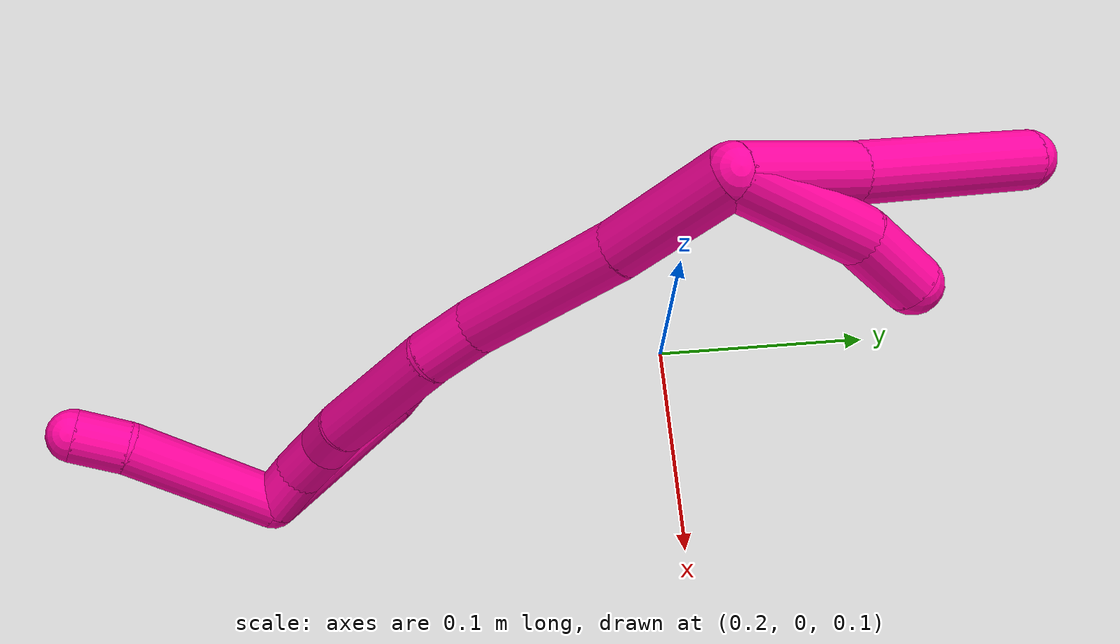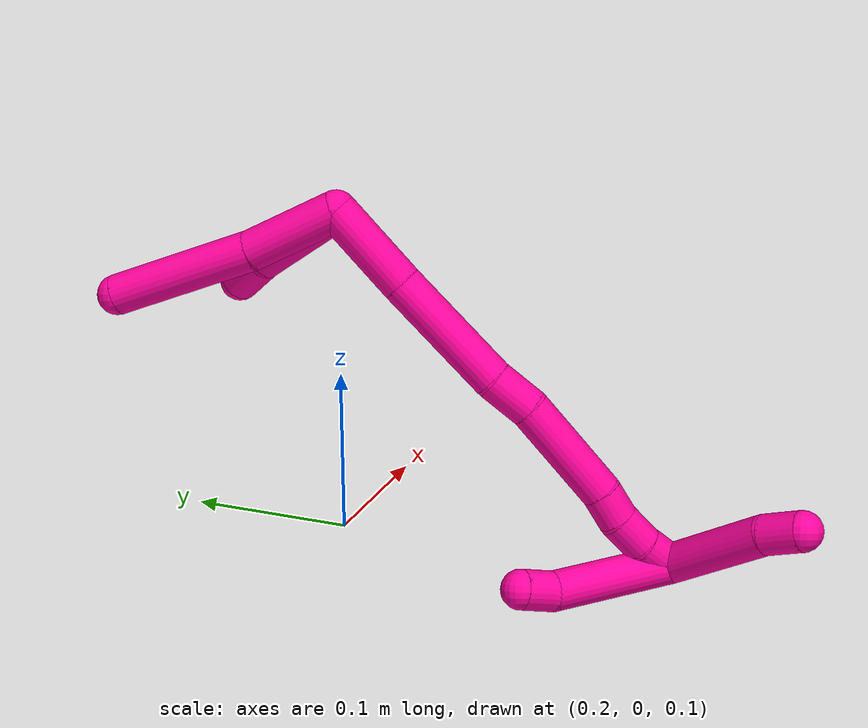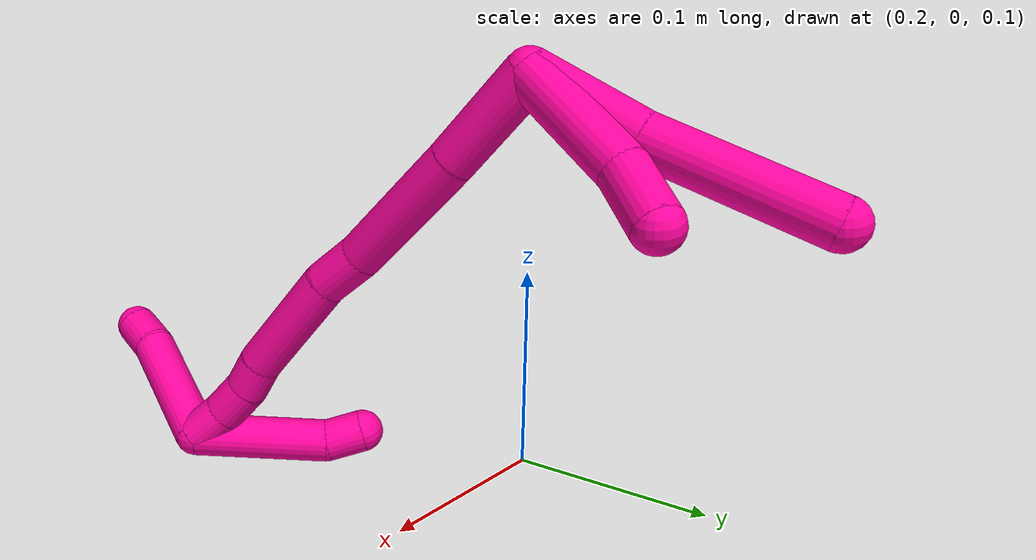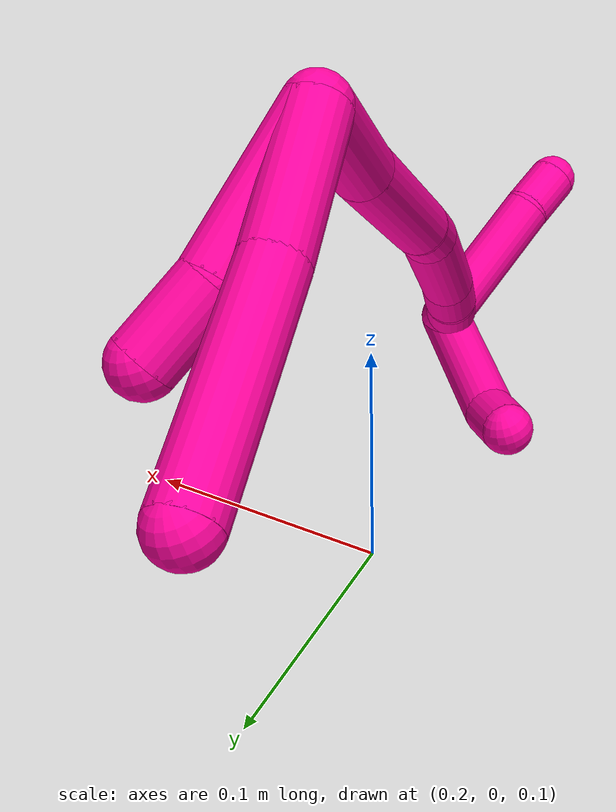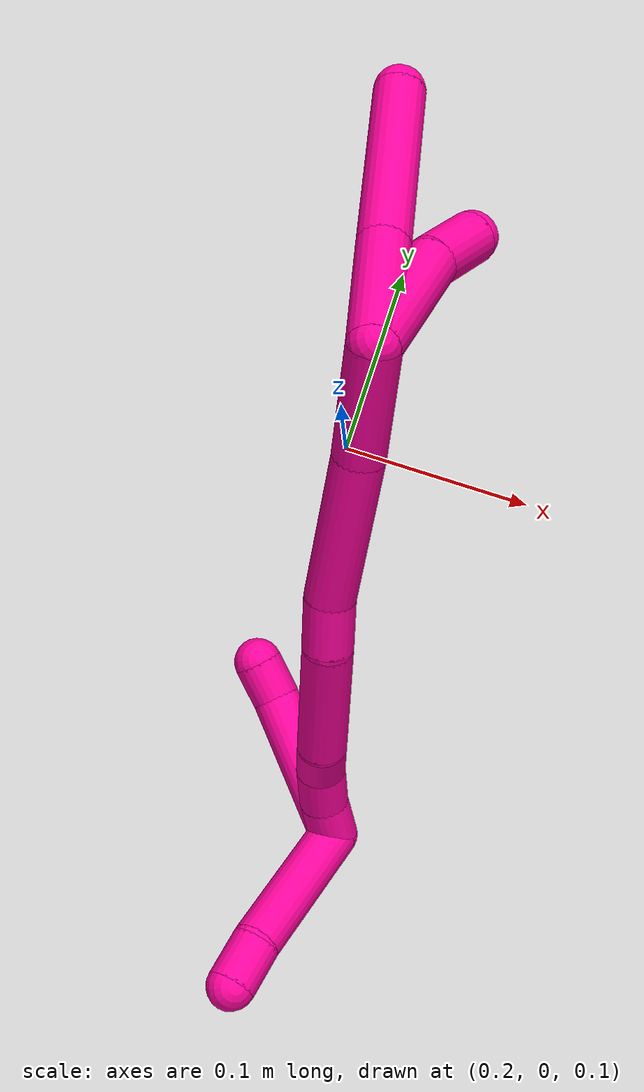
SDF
<sdf version="1.7">
 <world name="default">
  <model name="18">
   <static>0</static>
   <link name="18">
    <collision name="collision-cylinder-e_1_2_8">
     <pose>-0.008933 0.025607 -0.012046 -2.01052 -0.305754 0.476311</pose>
     <geometry><cylinder><radius>0.0125</radius><length>0.05935</length></cylinder></geometry>
     <surface>
      <friction><ode><mu>1.16</mu><mu2>1.16</mu2><slip1>0</slip1><slip2>0</slip2></ode></friction>
      <contact><ode><kp>1e+06</kp><kd>1</kd><max_vel>0</max_vel><min_depth>0.001</min_depth></ode></contact>
     </surface>
    </collision>
    <visual name="visual-cylinder-e_1_2_8">
     <pose>-0.008933 0.025607 -0.012046 -2.01052 -0.305754 0.476311</pose>
     <geometry><cylinder><radius>0.0125</radius><length>0.05935</length></cylinder></geometry>
     <material><ambient>1 0.007843 0.615686 1</ambient></material>
    </visual>
    <collision name="collision-cylinder-e_2_8_6">
     <pose>-0.033077 0.09163 -0.037857 -1.89903 -0.342256 0.473772</pose>
     <geometry><cylinder><radius>0.0125</radius><length>0.09065</length></cylinder></geometry>
     <surface>
      <friction><ode><mu>1.16</mu><mu2>1.16</mu2><slip1>0</slip1><slip2>0</slip2></ode></friction>
      <contact><ode><kp>1e+06</kp><kd>1</kd><max_vel>0</max_vel><min_depth>0.001</min_depth></ode></contact>
     </surface>
    </collision>
    <visual name="visual-cylinder-e_2_8_6">
     <pose>-0.033077 0.09163 -0.037857 -1.89903 -0.342256 0.473772</pose>
     <geometry><cylinder><radius>0.0125</radius><length>0.09065</length></cylinder></geometry>
     <material><ambient>1 0.007843 0.615686 1</ambient></material>
    </visual>
    <collision name="collision-cylinder-e_1_2_9">
     <pose>0.002305 0.030043 -0.014385 -2.01735 0.069081 -0.109602</pose>
     <geometry><cylinder><radius>0.0125</radius><length>0.066777</length></cylinder></geometry>
     <surface>
      <friction><ode><mu>1.16</mu><mu2>1.16</mu2><slip1>0</slip1><slip2>0</slip2></ode></friction>
      <contact><ode><kp>1e+06</kp><kd>1</kd><max_vel>0</max_vel><min_depth>0.001</min_depth></ode></contact>
     </surface>
    </collision>
    <visual name="visual-cylinder-e_1_2_9">
     <pose>0.002305 0.030043 -0.014385 -2.01735 0.069081 -0.109602</pose>
     <geometry><cylinder><radius>0.0125</radius><length>0.066777</length></cylinder></geometry>
     <material><ambient>1 0.007843 0.615686 1</ambient></material>
    </visual>
    <collision name="collision-cylinder-e_2_9_5">
     <pose>0.010099 0.074295 -0.035395 -2.00713 0.33681 -0.521588</pose>
     <geometry><cylinder><radius>0.0125</radius><length>0.033223</length></cylinder></geometry>
     <surface>
      <friction><ode><mu>1.16</mu><mu2>1.16</mu2><slip1>0</slip1><slip2>0</slip2></ode></friction>
      <contact><ode><kp>1e+06</kp><kd>1</kd><max_vel>0</max_vel><min_depth>0.001</min_depth></ode></contact>
     </surface>
    </collision>
    <visual name="visual-cylinder-e_2_9_5">
     <pose>0.010099 0.074295 -0.035395 -2.00713 0.33681 -0.521588</pose>
     <geometry><cylinder><radius>0.0125</radius><length>0.033223</length></cylinder></geometry>
     <material><ambient>1 0.007843 0.615686 1</ambient></material>
    </visual>
    <collision name="collision-cylinder-e_1_2_10">
     <pose>0.012874 -0.015013 -0.021366 2.52909 0.458041 1.27055</pose>
     <geometry><cylinder><radius>0.0125</radius><length>0.058229</length></cylinder></geometry>
     <surface>
      <friction><ode><mu>1.16</mu><mu2>1.16</mu2><slip1>0</slip1><slip2>0</slip2></ode></friction>
      <contact><ode><kp>1e+06</kp><kd>1</kd><max_vel>0</max_vel><min_depth>0.001</min_depth></ode></contact>
     </surface>
    </collision>
    <visual name="visual-cylinder-e_1_2_10">
     <pose>0.012874 -0.015013 -0.021366 2.52909 0.458041 1.27055</pose>
     <geometry><cylinder><radius>0.0125</radius><length>0.058229</length></cylinder></geometry>
     <material><ambient>1 0.007843 0.615686 1</ambient></material>
    </visual>
    <collision name="collision-cylinder-e_2_10_11">
     <pose>0.041607 -0.052693 -0.070993 2.46559 0.41263 1.07412</pose>
     <geometry><cylinder><radius>0.0125</radius><length>0.079092</length></cylinder></geometry>
     <surface>
      <friction><ode><mu>1.16</mu><mu2>1.16</mu2><slip1>0</slip1><slip2>0</slip2></ode></friction>
      <contact><ode><kp>1e+06</kp><kd>1</kd><max_vel>0</max_vel><min_depth>0.001</min_depth></ode></contact>
     </surface>
    </collision>
    <visual name="visual-cylinder-e_2_10_11">
     <pose>0.041607 -0.052693 -0.070993 2.46559 0.41263 1.07412</pose>
     <geometry><cylinder><radius>0.0125</radius><length>0.079092</length></cylinder></geometry>
     <material><ambient>1 0.007843 0.615686 1</ambient></material>
    </visual>
    <collision name="collision-cylinder-e_3_11_12">
     <pose>0.064864 -0.083594 -0.107877 2.37934 0.555264 1.2364</pose>
     <geometry><cylinder><radius>0.0125</radius><length>0.028065</length></cylinder></geometry>
     <surface>
      <friction><ode><mu>1.16</mu><mu2>1.16</mu2><slip1>0</slip1><slip2>0</slip2></ode></friction>
      <contact><ode><kp>1e+06</kp><kd>1</kd><max_vel>0</max_vel><min_depth>0.001</min_depth></ode></contact>
     </surface>
    </collision>
    <visual name="visual-cylinder-e_3_11_12">
     <pose>0.064864 -0.083594 -0.107877 2.37934 0.555264 1.2364</pose>
     <geometry><cylinder><radius>0.0125</radius><length>0.028065</length></cylinder></geometry>
     <material><ambient>1 0.007843 0.615686 1</ambient></material>
    </visual>
    <collision name="collision-cylinder-e_4_12_13">
     <pose>0.088748 -0.107474 -0.141836 2.58837 0.505673 1.47673</pose>
     <geometry><cylinder><radius>0.0125</radius><length>0.068072</length></cylinder></geometry>
     <surface>
      <friction><ode><mu>1.16</mu><mu2>1.16</mu2><slip1>0</slip1><slip2>0</slip2></ode></friction>
      <contact><ode><kp>1e+06</kp><kd>1</kd><max_vel>0</max_vel><min_depth>0.001</min_depth></ode></contact>
     </surface>
    </collision>
    <visual name="visual-cylinder-e_4_12_13">
     <pose>0.088748 -0.107474 -0.141836 2.58837 0.505673 1.47673</pose>
     <geometry><cylinder><radius>0.0125</radius><length>0.068072</length></cylinder></geometry>
     <material><ambient>1 0.007843 0.615686 1</ambient></material>
    </visual>
    <collision name="collision-cylinder-e_5_13_14">
     <pose>0.109759 -0.126464 -0.175608 2.7641 0.462397 1.77823</pose>
     <geometry><cylinder><radius>0.0125</radius><length>0.020281</length></cylinder></geometry>
     <surface>
      <friction><ode><mu>1.16</mu><mu2>1.16</mu2><slip1>0</slip1><slip2>0</slip2></ode></friction>
      <contact><ode><kp>1e+06</kp><kd>1</kd><max_vel>0</max_vel><min_depth>0.001</min_depth></ode></contact>
     </surface>
    </collision>
    <visual name="visual-cylinder-e_5_13_14">
     <pose>0.109759 -0.126464 -0.175608 2.7641 0.462397 1.77823</pose>
     <geometry><cylinder><radius>0.0125</radius><length>0.020281</length></cylinder></geometry>
     <material><ambient>1 0.007843 0.615686 1</ambient></material>
    </visual>
    <collision name="collision-cylinder-e_6_14_15">
     <pose>0.121085 -0.134845 -0.192038 2.57944 0.624089 1.68147</pose>
     <geometry><cylinder><radius>0.0125</radius><length>0.023285</length></cylinder></geometry>
     <surface>
      <friction><ode><mu>1.16</mu><mu2>1.16</mu2><slip1>0</slip1><slip2>0</slip2></ode></friction>
      <contact><ode><kp>1e+06</kp><kd>1</kd><max_vel>0</max_vel><min_depth>0.001</min_depth></ode></contact>
     </surface>
    </collision>
    <visual name="visual-cylinder-e_6_14_15">
     <pose>0.121085 -0.134845 -0.192038 2.57944 0.624089 1.68147</pose>
     <geometry><cylinder><radius>0.0125</radius><length>0.023285</length></cylinder></geometry>
     <material><ambient>1 0.007843 0.615686 1</ambient></material>
    </visual>
    <collision name="collision-cylinder-e_7_15_1">
     <pose>0.1361 -0.144695 -0.206463 2.499 0.796324 1.80281</pose>
     <geometry><cylinder><radius>0.0125</radius><length>0.022976</length></cylinder></geometry>
     <surface>
      <friction><ode><mu>1.16</mu><mu2>1.16</mu2><slip1>0</slip1><slip2>0</slip2></ode></friction>
      <contact><ode><kp>1e+06</kp><kd>1</kd><max_vel>0</max_vel><min_depth>0.001</min_depth></ode></contact>
     </surface>
    </collision>
    <visual name="visual-cylinder-e_7_15_1">
     <pose>0.1361 -0.144695 -0.206463 2.499 0.796324 1.80281</pose>
     <geometry><cylinder><radius>0.0125</radius><length>0.022976</length></cylinder></geometry>
     <material><ambient>1 0.007843 0.615686 1</ambient></material>
    </visual>
    <collision name="collision-cylinder-e_1_1_16">
     <pose>0.113732 -0.12648 -0.219991 -1.86967 -0.903377 1.16273</pose>
     <geometry><cylinder><radius>0.0125</radius><length>0.077868</length></cylinder></geometry>
     <surface>
      <friction><ode><mu>1.16</mu><mu2>1.16</mu2><slip1>0</slip1><slip2>0</slip2></ode></friction>
      <contact><ode><kp>1e+06</kp><kd>1</kd><max_vel>0</max_vel><min_depth>0.001</min_depth></ode></contact>
     </surface>
    </collision>
    <visual name="visual-cylinder-e_1_1_16">
     <pose>0.113732 -0.12648 -0.219991 -1.86967 -0.903377 1.16273</pose>
     <geometry><cylinder><radius>0.0125</radius><length>0.077868</length></cylinder></geometry>
     <material><ambient>1 0.007843 0.615686 1</ambient></material>
    </visual>
    <collision name="collision-cylinder-e_2_16_4">
     <pose>0.073491 -0.098196 -0.225861 -1.34171 -1.06157 0.871913</pose>
     <geometry><cylinder><radius>0.0125</radius><length>0.022132</length></cylinder></geometry>
     <surface>
      <friction><ode><mu>1.16</mu><mu2>1.16</mu2><slip1>0</slip1><slip2>0</slip2></ode></friction>
      <contact><ode><kp>1e+06</kp><kd>1</kd><max_vel>0</max_vel><min_depth>0.001</min_depth></ode></contact>
     </surface>
    </collision>
    <visual name="visual-cylinder-e_2_16_4">
     <pose>0.073491 -0.098196 -0.225861 -1.34171 -1.06157 0.871913</pose>
     <geometry><cylinder><radius>0.0125</radius><length>0.022132</length></cylinder></geometry>
     <material><ambient>1 0.007843 0.615686 1</ambient></material>
    </visual>
    <collision name="collision-cylinder-e_1_1_17">
     <pose>0.138309 -0.184325 -0.200368 1.2254 -0.160838 -0.113184</pose>
     <geometry><cylinder><radius>0.0125</radius><length>0.074967</length></cylinder></geometry>
     <surface>
      <friction><ode><mu>1.16</mu><mu2>1.16</mu2><slip1>0</slip1><slip2>0</slip2></ode></friction>
      <contact><ode><kp>1e+06</kp><kd>1</kd><max_vel>0</max_vel><min_depth>0.001</min_depth></ode></contact>
     </surface>
    </collision>
    <visual name="visual-cylinder-e_1_1_17">
     <pose>0.138309 -0.184325 -0.200368 1.2254 -0.160838 -0.113184</pose>
     <geometry><cylinder><radius>0.0125</radius><length>0.074967</length></cylinder></geometry>
     <material><ambient>1 0.007843 0.615686 1</ambient></material>
    </visual>
    <collision name="collision-cylinder-e_2_17_3">
     <pose>0.131912 -0.231469 -0.185721 1.40046 -0.03149 -0.026537</pose>
     <geometry><cylinder><radius>0.0125</radius><length>0.025033</length></cylinder></geometry>
     <surface>
      <friction><ode><mu>1.16</mu><mu2>1.16</mu2><slip1>0</slip1><slip2>0</slip2></ode></friction>
      <contact><ode><kp>1e+06</kp><kd>1</kd><max_vel>0</max_vel><min_depth>0.001</min_depth></ode></contact>
     </surface>
    </collision>
    <visual name="visual-cylinder-e_2_17_3">
     <pose>0.131912 -0.231469 -0.185721 1.40046 -0.03149 -0.026537</pose>
     <geometry><cylinder><radius>0.0125</radius><length>0.025033</length></cylinder></geometry>
     <material><ambient>1 0.007843 0.615686 1</ambient></material>
    </visual>
    <collision name="collision-sphere-3">
     <pose>0.131518 -0.243798 -0.1836 0 -0 0</pose>
     <geometry><sphere><radius>0.0125</radius></sphere></geometry>
     <surface>
      <friction><ode><mu>1.16</mu><mu2>1.16</mu2><slip1>0</slip1><slip2>0</slip2></ode></friction>
      <contact><ode><kp>1e+06</kp><kd>1</kd><max_vel>0</max_vel><min_depth>0.001</min_depth></ode></contact>
     </surface>
    </collision>
    <visual name="visual-sphere-3">
     <pose>0.131518 -0.243798 -0.1836 0 -0 0</pose>
     <geometry><sphere><radius>0.0125</radius></sphere></geometry>
     <material><ambient>1 0.007843 0.615686 1</ambient></material>
    </visual>
    <collision name="collision-sphere-17">
     <pose>0.132306 -0.219139 -0.187841 0 -0 0</pose>
     <geometry><sphere><radius>0.0125</radius></sphere></geometry>
     <surface>
      <friction><ode><mu>1.16</mu><mu2>1.16</mu2><slip1>0</slip1><slip2>0</slip2></ode></friction>
      <contact><ode><kp>1e+06</kp><kd>1</kd><max_vel>0</max_vel><min_depth>0.001</min_depth></ode></contact>
     </surface>
    </collision>
    <visual name="visual-sphere-17">
     <pose>0.132306 -0.219139 -0.187841 0 -0 0</pose>
     <geometry><sphere><radius>0.0125</radius></sphere></geometry>
     <material><ambient>1 0.007843 0.615686 1</ambient></material>
    </visual>
    <collision name="collision-sphere-4">
     <pose>0.063828 -0.092942 -0.224636 0 -0 0</pose>
     <geometry><sphere><radius>0.0125</radius></sphere></geometry>
     <surface>
      <friction><ode><mu>1.16</mu><mu2>1.16</mu2><slip1>0</slip1><slip2>0</slip2></ode></friction>
      <contact><ode><kp>1e+06</kp><kd>1</kd><max_vel>0</max_vel><min_depth>0.001</min_depth></ode></contact>
     </surface>
    </collision>
    <visual name="visual-sphere-4">
     <pose>0.063828 -0.092942 -0.224636 0 -0 0</pose>
     <geometry><sphere><radius>0.0125</radius></sphere></geometry>
     <material><ambient>1 0.007843 0.615686 1</ambient></material>
    </visual>
    <collision name="collision-sphere-16">
     <pose>0.083153 -0.10345 -0.227087 0 -0 0</pose>
     <geometry><sphere><radius>0.0125</radius></sphere></geometry>
     <surface>
      <friction><ode><mu>1.16</mu><mu2>1.16</mu2><slip1>0</slip1><slip2>0</slip2></ode></friction>
      <contact><ode><kp>1e+06</kp><kd>1</kd><max_vel>0</max_vel><min_depth>0.001</min_depth></ode></contact>
     </surface>
    </collision>
    <visual name="visual-sphere-16">
     <pose>0.083153 -0.10345 -0.227087 0 -0 0</pose>
     <geometry><sphere><radius>0.0125</radius></sphere></geometry>
     <material><ambient>1 0.007843 0.615686 1</ambient></material>
    </visual>
    <collision name="collision-sphere-1">
     <pose>0.144312 -0.14951 -0.212895 0 -0 0</pose>
     <geometry><sphere><radius>0.0125</radius></sphere></geometry>
     <surface>
      <friction><ode><mu>1.16</mu><mu2>1.16</mu2><slip1>0</slip1><slip2>0</slip2></ode></friction>
      <contact><ode><kp>1e+06</kp><kd>1</kd><max_vel>0</max_vel><min_depth>0.001</min_depth></ode></contact>
     </surface>
    </collision>
    <visual name="visual-sphere-1">
     <pose>0.144312 -0.14951 -0.212895 0 -0 0</pose>
     <geometry><sphere><radius>0.0125</radius></sphere></geometry>
     <material><ambient>1 0.007843 0.615686 1</ambient></material>
    </visual>
    <collision name="collision-sphere-15">
     <pose>0.127889 -0.139881 -0.200032 0 -0 0</pose>
     <geometry><sphere><radius>0.0125</radius></sphere></geometry>
     <surface>
      <friction><ode><mu>1.16</mu><mu2>1.16</mu2><slip1>0</slip1><slip2>0</slip2></ode></friction>
      <contact><ode><kp>1e+06</kp><kd>1</kd><max_vel>0</max_vel><min_depth>0.001</min_depth></ode></contact>
     </surface>
    </collision>
    <visual name="visual-sphere-15">
     <pose>0.127889 -0.139881 -0.200032 0 -0 0</pose>
     <geometry><sphere><radius>0.0125</radius></sphere></geometry>
     <material><ambient>1 0.007843 0.615686 1</ambient></material>
    </visual>
    <collision name="collision-sphere-14">
     <pose>0.114282 -0.129809 -0.184044 0 -0 0</pose>
     <geometry><sphere><radius>0.0125</radius></sphere></geometry>
     <surface>
      <friction><ode><mu>1.16</mu><mu2>1.16</mu2><slip1>0</slip1><slip2>0</slip2></ode></friction>
      <contact><ode><kp>1e+06</kp><kd>1</kd><max_vel>0</max_vel><min_depth>0.001</min_depth></ode></contact>
     </surface>
    </collision>
    <visual name="visual-sphere-14">
     <pose>0.114282 -0.129809 -0.184044 0 -0 0</pose>
     <geometry><sphere><radius>0.0125</radius></sphere></geometry>
     <material><ambient>1 0.007843 0.615686 1</ambient></material>
    </visual>
    <collision name="collision-sphere-13">
     <pose>0.105235 -0.123119 -0.167171 0 -0 0</pose>
     <geometry><sphere><radius>0.0125</radius></sphere></geometry>
     <surface>
      <friction><ode><mu>1.16</mu><mu2>1.16</mu2><slip1>0</slip1><slip2>0</slip2></ode></friction>
      <contact><ode><kp>1e+06</kp><kd>1</kd><max_vel>0</max_vel><min_depth>0.001</min_depth></ode></contact>
     </surface>
    </collision>
    <visual name="visual-sphere-13">
     <pose>0.105235 -0.123119 -0.167171 0 -0 0</pose>
     <geometry><sphere><radius>0.0125</radius></sphere></geometry>
     <material><ambient>1 0.007843 0.615686 1</ambient></material>
    </visual>
    <collision name="collision-sphere-12">
     <pose>0.072261 -0.091828 -0.116502 0 -0 0</pose>
     <geometry><sphere><radius>0.0125</radius></sphere></geometry>
     <surface>
      <friction><ode><mu>1.16</mu><mu2>1.16</mu2><slip1>0</slip1><slip2>0</slip2></ode></friction>
      <contact><ode><kp>1e+06</kp><kd>1</kd><max_vel>0</max_vel><min_depth>0.001</min_depth></ode></contact>
     </surface>
    </collision>
    <visual name="visual-sphere-12">
     <pose>0.072261 -0.091828 -0.116502 0 -0 0</pose>
     <geometry><sphere><radius>0.0125</radius></sphere></geometry>
     <material><ambient>1 0.007843 0.615686 1</ambient></material>
    </visual>
    <collision name="collision-sphere-11">
     <pose>0.057466 -0.07536 -0.099253 0 -0 0</pose>
     <geometry><sphere><radius>0.0125</radius></sphere></geometry>
     <surface>
      <friction><ode><mu>1.16</mu><mu2>1.16</mu2><slip1>0</slip1><slip2>0</slip2></ode></friction>
      <contact><ode><kp>1e+06</kp><kd>1</kd><max_vel>0</max_vel><min_depth>0.001</min_depth></ode></contact>
     </surface>
    </collision>
    <visual name="visual-sphere-11">
     <pose>0.057466 -0.07536 -0.099253 0 -0 0</pose>
     <geometry><sphere><radius>0.0125</radius></sphere></geometry>
     <material><ambient>1 0.007843 0.615686 1</ambient></material>
    </visual>
    <collision name="collision-sphere-8">
     <pose>-0.017865 0.051214 -0.024093 0 -0 0</pose>
     <geometry><sphere><radius>0.0125</radius></sphere></geometry>
     <surface>
      <friction><ode><mu>1.16</mu><mu2>1.16</mu2><slip1>0</slip1><slip2>0</slip2></ode></friction>
      <contact><ode><kp>1e+06</kp><kd>1</kd><max_vel>0</max_vel><min_depth>0.001</min_depth></ode></contact>
     </surface>
    </collision>
    <visual name="visual-sphere-8">
     <pose>-0.017865 0.051214 -0.024093 0 -0 0</pose>
     <geometry><sphere><radius>0.0125</radius></sphere></geometry>
     <material><ambient>1 0.007843 0.615686 1</ambient></material>
    </visual>
    <collision name="collision-sphere-2">
     <geometry><sphere><radius>0.0125</radius></sphere></geometry>
     <surface>
      <friction><ode><mu>1.16</mu><mu2>1.16</mu2><slip1>0</slip1><slip2>0</slip2></ode></friction>
      <contact><ode><kp>1e+06</kp><kd>1</kd><max_vel>0</max_vel><min_depth>0.001</min_depth></ode></contact>
     </surface>
    </collision>
    <visual name="visual-sphere-2">
     <geometry><sphere><radius>0.0125</radius></sphere></geometry>
     <material><ambient>1 0.007843 0.615686 1</ambient></material>
    </visual>
    <collision name="collision-sphere-9">
     <pose>0.004609 0.060085 -0.028769 0 -0 0</pose>
     <geometry><sphere><radius>0.0125</radius></sphere></geometry>
     <surface>
      <friction><ode><mu>1.16</mu><mu2>1.16</mu2><slip1>0</slip1><slip2>0</slip2></ode></friction>
      <contact><ode><kp>1e+06</kp><kd>1</kd><max_vel>0</max_vel><min_depth>0.001</min_depth></ode></contact>
     </surface>
    </collision>
    <visual name="visual-sphere-9">
     <pose>0.004609 0.060085 -0.028769 0 -0 0</pose>
     <geometry><sphere><radius>0.0125</radius></sphere></geometry>
     <material><ambient>1 0.007843 0.615686 1</ambient></material>
    </visual>
    <collision name="collision-sphere-6">
     <pose>-0.048288 0.132047 -0.051621 0 -0 0</pose>
     <geometry><sphere><radius>0.0125</radius></sphere></geometry>
     <surface>
      <friction><ode><mu>1.16</mu><mu2>1.16</mu2><slip1>0</slip1><slip2>0</slip2></ode></friction>
      <contact><ode><kp>1e+06</kp><kd>1</kd><max_vel>0</max_vel><min_depth>0.001</min_depth></ode></contact>
     </surface>
    </collision>
    <visual name="visual-sphere-6">
     <pose>-0.048288 0.132047 -0.051621 0 -0 0</pose>
     <geometry><sphere><radius>0.0125</radius></sphere></geometry>
     <material><ambient>1 0.007843 0.615686 1</ambient></material>
    </visual>
    <collision name="collision-sphere-5">
     <pose>0.015589 0.088504 -0.042021 0 -0 0</pose>
     <geometry><sphere><radius>0.0125</radius></sphere></geometry>
     <surface>
      <friction><ode><mu>1.16</mu><mu2>1.16</mu2><slip1>0</slip1><slip2>0</slip2></ode></friction>
      <contact><ode><kp>1e+06</kp><kd>1</kd><max_vel>0</max_vel><min_depth>0.001</min_depth></ode></contact>
     </surface>
    </collision>
    <visual name="visual-sphere-5">
     <pose>0.015589 0.088504 -0.042021 0 -0 0</pose>
     <geometry><sphere><radius>0.0125</radius></sphere></geometry>
     <material><ambient>1 0.007843 0.615686 1</ambient></material>
    </visual>
    <collision name="collision-sphere-10">
     <pose>0.025749 -0.030026 -0.042733 0 -0 0</pose>
     <geometry><sphere><radius>0.0125</radius></sphere></geometry>
     <surface>
      <friction><ode><mu>1.16</mu><mu2>1.16</mu2><slip1>0</slip1><slip2>0</slip2></ode></friction>
      <contact><ode><kp>1e+06</kp><kd>1</kd><max_vel>0</max_vel><min_depth>0.001</min_depth></ode></contact>
     </surface>
    </collision>
    <visual name="visual-sphere-10">
     <pose>0.025749 -0.030026 -0.042733 0 -0 0</pose>
     <geometry><sphere><radius>0.0125</radius></sphere></geometry>
     <material><ambient>1 0.007843 0.615686 1</ambient></material>
    </visual>
    <inertial>
     <pose>0.054918 -0.054756 -0.107201 0 -0 0</pose>
     <mass>0.75</mass>
     <inertia>
      <ixx>0.000317</ixx>
      <ixy>0</ixy>
      <ixz>0</ixz>
      <iyy>0.000152</iyy>
      <iyz>0</iyz>
      <izz>-4.2e-05</izz>
     </inertia>
    </inertial>
   </link>
   <pose>0.215071 0.007562 0.29748 -0.171963 0.258856 -0.26623</pose>
  </model>
 </world>
</sdf>
